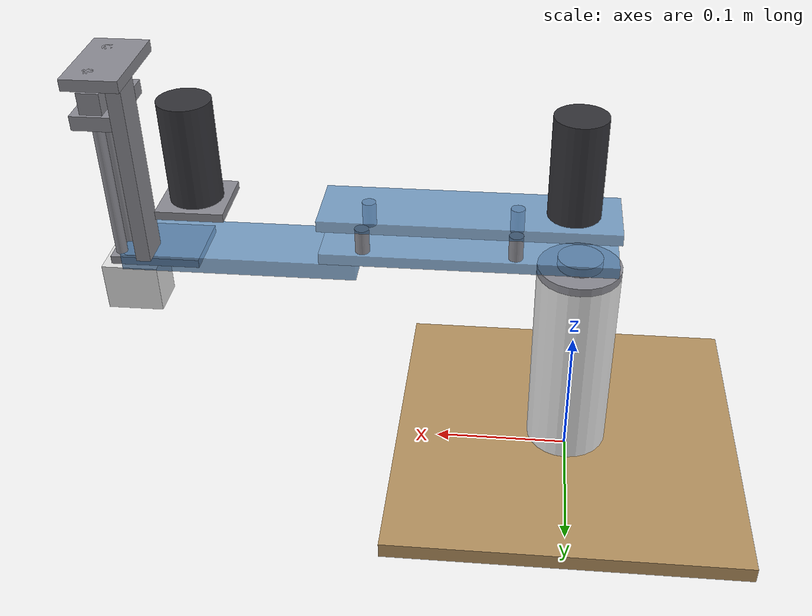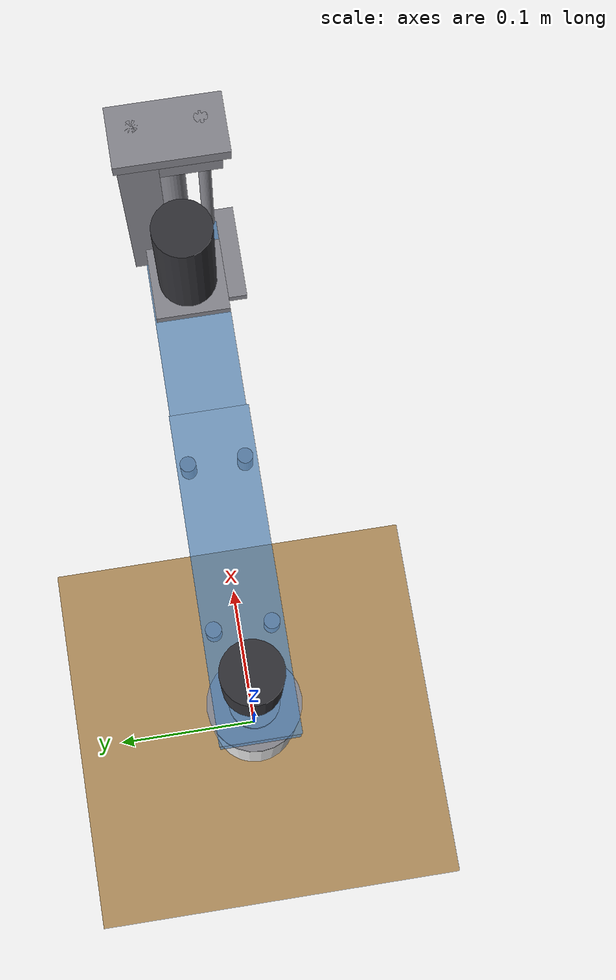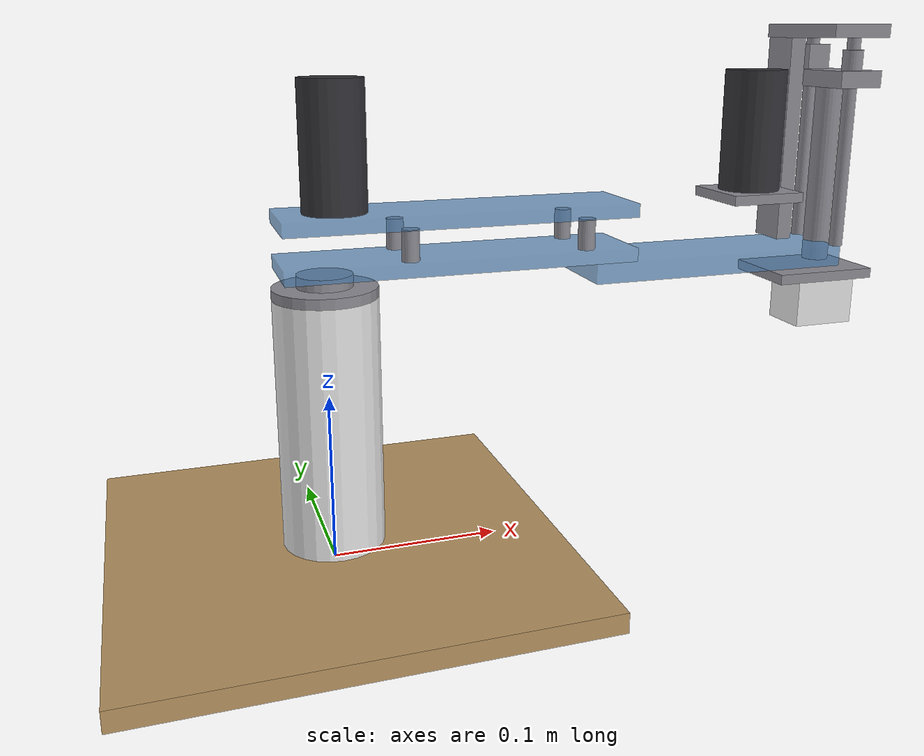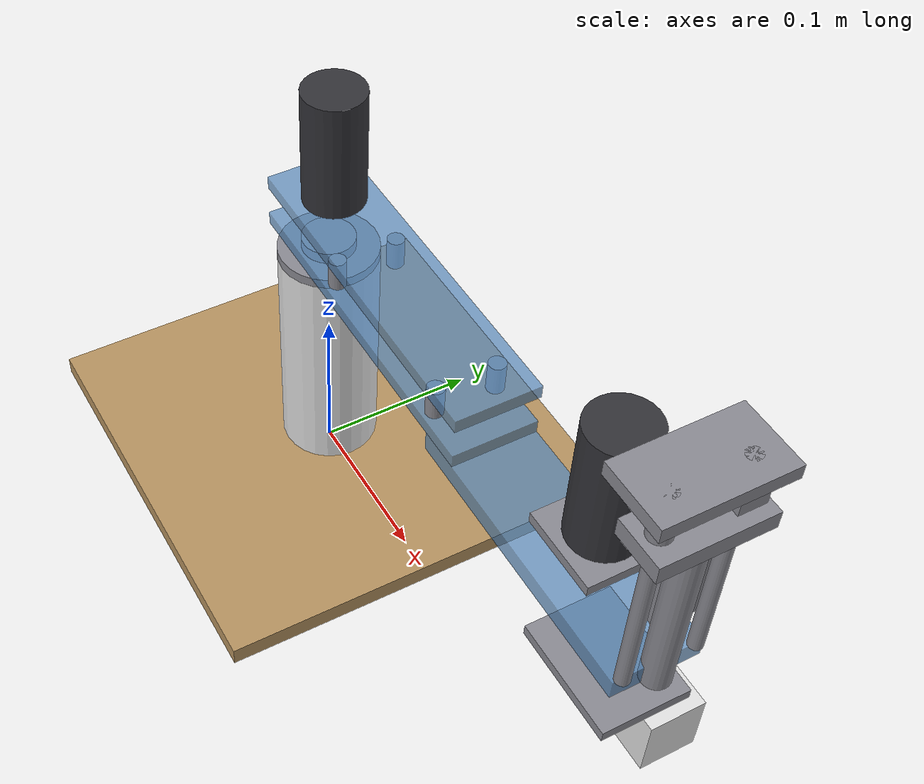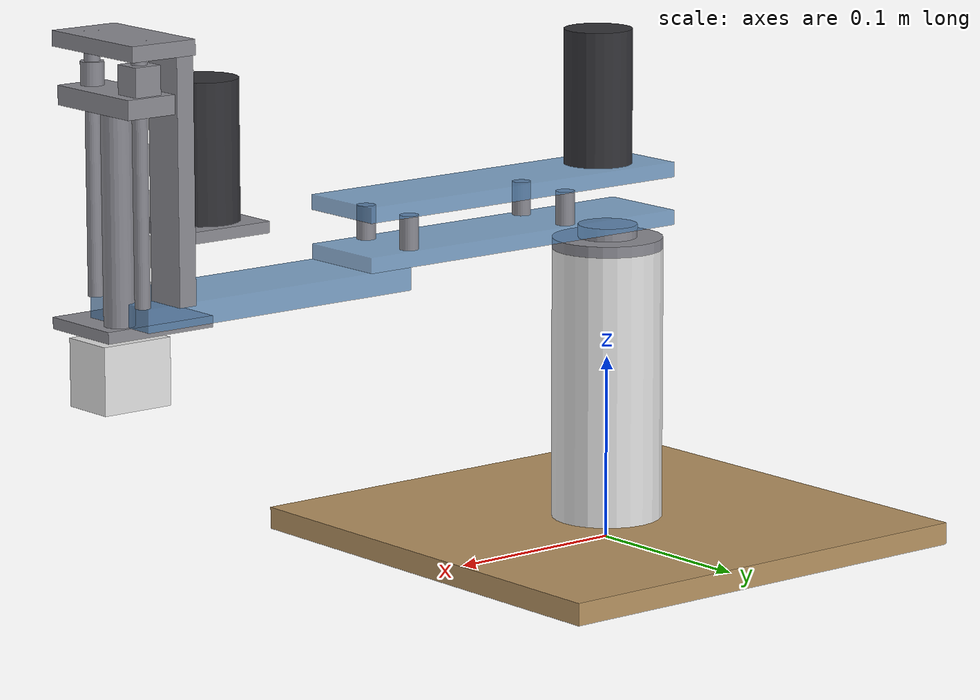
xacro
<?xml version="1.0"?>
<robot xmlns:xacro="http://www.ros.org/wiki/xacro" name="station1">

  <xacro:arg name="prefijo" default="station1/"/>
  <xacro:property name="p" value="$(arg prefijo)"/>

  <xacro:include filename="$(find station1_description)/urdf/parametros.xacro"/>
  <xacro:include filename="$(find station1_description)/urdf/inercias.xacro"/>
  <xacro:include filename="$(find station1_description)/urdf/station1.gazebo.xacro"/>
  <xacro:include filename="$(find station1_description)/urdf/station1.ros2_control.xacro"/>

  <!-- Con control:=false el modelo se puede abrir en RViz sin levantar el
       controller_manager, que es como se reviso el arbol TF en la Entrega 1. -->
  <xacro:arg name="control" default="true"/>
  <xacro:arg name="controladores"
             default="$(find station1_description)/config/station1_controllers.yaml"/>

  <material name="acrilico">  <color rgba="0.35 0.55 0.75 0.75"/></material>
  <material name="mdf">       <color rgba="0.72 0.58 0.38 1.0"/></material>
  <material name="pla">       <color rgba="0.90 0.90 0.90 1.0"/></material>
  <material name="metal">     <color rgba="0.55 0.55 0.58 1.0"/></material>
  <material name="motor">     <color rgba="0.20 0.20 0.22 1.0"/></material>

  <xacro:property name="z_columna_alto" value="${0.160 - base_z}"/>
  <xacro:property name="m_base" value="1.266"/>

  <link name="${p}base_link">
    <visual>
      <origin xyz="0 0 ${base_z/2}"/>
      <geometry><box size="${base_x} ${base_y} ${base_z}"/></geometry>
      <material name="mdf"/>
    </visual>
    <visual>
      <origin xyz="0 0 ${base_z + z_columna_alto/2}"/>
      <geometry><cylinder radius="${columna_radio}" length="${z_columna_alto}"/></geometry>
      <material name="pla"/>
    </visual>
    <visual>
      <origin xyz="0 0 ${0.160 + brida_espesor/2}"/>
      <geometry><cylinder radius="${columna_radio}" length="${brida_espesor}"/></geometry>
      <material name="metal"/>
    </visual>
    <visual>
      <origin xyz="0 0 ${altura_columna - rod_art_alto/2}"/>
      <geometry><cylinder radius="${rod_art_diam/2}" length="${rod_art_alto}"/></geometry>
      <material name="metal"/>
    </visual>
    <!-- Motor de theta1, dentro de la columna. El cuerpo va desplazado 7 mm
         del eje de salida porque la reductora saca el eje a un lado. -->
    <visual>
      <origin xyz="${motor_desfase} 0 ${0.160 - motor_cuerpo/2}"/>
      <geometry><cylinder radius="${motor_diametro/2}" length="${motor_cuerpo}"/></geometry>
      <material name="motor"/>
    </visual>

    <collision>
      <origin xyz="0 0 ${base_z/2}"/>
      <geometry><box size="${base_x} ${base_y} ${base_z}"/></geometry>
    </collision>
    <collision>
      <origin xyz="0 0 ${base_z + (altura_columna - base_z)/2}"/>
      <geometry><cylinder radius="${columna_radio}" length="${altura_columna - base_z}"/></geometry>
    </collision>

    <inertial>
      <origin xyz="0 0 ${altura_columna/3}"/>
      <mass value="${m_base}"/>
      <inertia
        ixx="${m_base * (base_y*base_y + altura_columna*altura_columna) / 12.0}" ixy="0.0" ixz="0.0"
        iyy="${m_base * (base_x*base_x + altura_columna*altura_columna) / 12.0}" iyz="0.0"
        izz="${m_base * (base_x*base_x + base_y*base_y) / 12.0}"/>
    </inertial>
  </link>

  <xacro:arg name="anclar" default="true"/>
  <xacro:if value="$(arg anclar)">
    <link name="world"/>
    <joint name="${p}anclaje" type="fixed">
      <parent link="world"/>
      <child  link="${p}base_link"/>
    </joint>
  </xacro:if>

  <joint name="${p}joint_1" type="revolute">
    <parent link="${p}base_link"/>
    <child  link="${p}link_1"/>
    <origin xyz="0 0 ${altura_columna}"/>
    <axis xyz="0 0 1"/>
    <limit lower="${lim_theta1_inf}" upper="${lim_theta1_sup}"
           velocity="${vel_rot}" effort="${esfuerzo_rot}"/>
    <dynamics damping="0.05" friction="0.01"/>
  </joint>

  <link name="${p}link_1">
    <visual>
      <origin xyz="${(l1+cola)/2 - cola} 0 ${brazo_espesor/2}"/>
      <geometry><box size="${l1+cola} ${brazo_ancho} ${brazo_espesor}"/></geometry>
      <material name="acrilico"/>
    </visual>
    <visual>
      <origin xyz="${(l1+cola)/2 - cola} 0 ${link1_alto - brazo_espesor/2}"/>
      <geometry><box size="${l1+cola} ${brazo_ancho} ${brazo_espesor}"/></geometry>
      <material name="acrilico"/>
    </visual>
    <xacro:macro name="separador_l1" params="sx sy">
      <visual>
        <origin xyz="${sx} ${sy} ${link1_alto/2}"/>
        <geometry><cylinder radius="0.005" length="${link1_alto - 2*brazo_espesor}"/></geometry>
        <material name="metal"/>
      </visual>
    </xacro:macro>
    <xacro:separador_l1 sx="0.045" sy="0.018"/>
    <xacro:separador_l1 sx="0.045" sy="-0.018"/>
    <xacro:separador_l1 sx="0.150" sy="0.018"/>
    <xacro:separador_l1 sx="0.150" sy="-0.018"/>
    <visual>
      <origin xyz="${motor_desfase} 0 ${link1_alto + motor_cuerpo/2}"/>
      <geometry><cylinder radius="${motor_diametro/2}" length="${motor_cuerpo}"/></geometry>
      <material name="motor"/>
    </visual>

    <!-- Colision: la envolvente de la estructura hueca mas el motor. -->
    <collision>
      <origin xyz="${(l1+cola)/2 - cola} 0 ${link1_alto/2}"/>
      <geometry><box size="${l1+cola} ${brazo_ancho} ${link1_alto}"/></geometry>
    </collision>
    <collision>
      <origin xyz="${motor_desfase} 0 ${link1_alto + motor_cuerpo/2}"/>
      <geometry><cylinder radius="${motor_diametro/2}" length="${motor_cuerpo}"/></geometry>
    </collision>

    <inertial>
      <origin xyz="${cx_link1} ${cy_link1} ${cz_link1}"/>
      <mass value="${m_link1}"/>
      <inertia ixx="${ixx_link1}" ixy="${ixy_link1}" ixz="${ixz_link1}"
               iyy="${iyy_link1}" iyz="${iyz_link1}" izz="${izz_link1}"/>
    </inertial>
  </link>

  <joint name="${p}joint_2" type="revolute">
    <parent link="${p}link_1"/>
    <child  link="${p}link_2"/>
    <origin xyz="${l1} 0 0"/>
    <axis xyz="0 0 1"/>
    <limit lower="${-lim_theta2}" upper="${lim_theta2}"
           velocity="${vel_rot}" effort="${esfuerzo_rot}"/>
    <dynamics damping="0.05" friction="0.01"/>
  </joint>

  <link name="${p}link_2">
    <visual>
      <origin xyz="${(l2+cola)/2 - cola} 0 ${-link2_espesor/2}"/>
      <geometry><box size="${l2+cola} ${brazo_ancho} ${link2_espesor}"/></geometry>
      <material name="acrilico"/>
    </visual>
    <!-- Husillo y varilla de guia antigiro, paralelos -->
    <visual>
      <origin xyz="${l2} ${y_husillo} ${husillo_largo/2}"/>
      <geometry><cylinder radius="${husillo_radio}" length="${husillo_largo}"/></geometry>
      <material name="metal"/>
    </visual>
    <visual>
      <origin xyz="${l2} ${y_guia} ${husillo_largo/2}"/>
      <geometry><cylinder radius="${husillo_radio}" length="${husillo_largo}"/></geometry>
      <material name="metal"/>
    </visual>
    <!-- Puente que sostiene el rodamiento superior del husillo -->
    <visual>
      <origin xyz="0.121 0.020 0.063"/>
      <geometry><box size="0.010 0.024 0.126"/></geometry>
      <material name="metal"/>
    </visual>
    <visual>
      <origin xyz="0.135 0 0.130"/>
      <geometry><box size="0.038 0.068 0.008"/></geometry>
      <material name="metal"/>
    </visual>
    <!-- Soporte y motor de d3 -->
    <visual>
      <origin xyz="${motor3_offset - motor_desfase} 0 0.032"/>
      <geometry><box size="0.047 0.047 0.006"/></geometry>
      <material name="metal"/>
    </visual>
    <visual>
      <origin xyz="${motor3_offset - motor_desfase} 0 ${0.035 + motor_cuerpo/2}"/>
      <geometry><cylinder radius="${motor_diametro/2}" length="${motor_cuerpo}"/></geometry>
      <material name="motor"/>
    </visual>

    <collision>
      <origin xyz="${(l2+cola)/2 - cola} 0 ${-link2_espesor/2}"/>
      <geometry><box size="${l2+cola} ${brazo_ancho} ${link2_espesor}"/></geometry>
    </collision>
    <collision>
      <origin xyz="${l2} 0 ${husillo_largo/2}"/>
      <geometry><box size="0.038 0.068 ${husillo_largo}"/></geometry>
    </collision>
    <collision>
      <origin xyz="${motor3_offset - motor_desfase} 0 ${0.035 + motor_cuerpo/2}"/>
      <geometry><cylinder radius="${motor_diametro/2}" length="${motor_cuerpo}"/></geometry>
    </collision>

    <inertial>
      <origin xyz="${cx_link2} ${cy_link2} ${cz_link2}"/>
      <mass value="${m_link2}"/>
      <inertia ixx="${ixx_link2}" ixy="${ixy_link2}" ixz="${ixz_link2}"
               iyy="${iyy_link2}" iyz="${iyz_link2}" izz="${izz_link2}"/>
    </inertial>
  </link>

  <joint name="${p}joint_3" type="prismatic">
    <parent link="${p}link_2"/>
    <child  link="${p}link_3"/>
    <origin xyz="${l2} 0 ${carro_z0}"/>
    <axis xyz="0 0 -1"/>
    <limit lower="0.0" upper="${carrera_d3}"
           velocity="${vel_pris}" effort="${esfuerzo_pris}"/>
    <dynamics damping="2.0" friction="4.0"/>
  </joint>

  <link name="${p}link_3">
    <visual>
      <origin xyz="0 0 ${carro_espesor/2}"/>
      <geometry><box size="0.028 0.060 ${carro_espesor}"/></geometry>
      <material name="metal"/>
    </visual>
    <visual>
      <origin xyz="0 ${y_husillo} ${carro_espesor + tuerca_lado/2}"/>
      <geometry><box size="${tuerca_lado} ${tuerca_lado} ${tuerca_lado}"/></geometry>
      <material name="metal"/>
    </visual>
    <visual>
      <origin xyz="0 ${y_guia} ${carro_espesor + 0.006}"/>
      <geometry><cylinder radius="0.006" length="0.012"/></geometry>
      <material name="metal"/>
    </visual>
    <visual>
      <origin xyz="0 0 ${-vastago_largo/2}"/>
      <geometry><cylinder radius="${vastago_radio}" length="${vastago_largo}"/></geometry>
      <material name="metal"/>
    </visual>
    <visual>
      <origin xyz="-0.018 -0.014 ${-vastago_largo + 0.003}"/>
      <geometry><box size="0.064 0.048 0.006"/></geometry>
      <material name="metal"/>
    </visual>

    <collision>
      <origin xyz="0 0 ${carro_espesor/2}"/>
      <geometry><box size="0.028 0.060 ${carro_espesor}"/></geometry>
    </collision>
    <collision>
      <origin xyz="0 0 ${-vastago_largo/2}"/>
      <geometry><cylinder radius="${vastago_radio}" length="${vastago_largo}"/></geometry>
    </collision>

    <inertial>
      <origin xyz="${cx_link3} ${cy_link3} ${cz_link3}"/>
      <mass value="${m_link3}"/>
      <inertia ixx="${ixx_link3}" ixy="${ixy_link3}" ixz="${ixz_link3}"
               iyy="${iyy_link3}" iyz="${iyz_link3}" izz="${izz_link3}"/>
    </inertial>
  </link>

  <!-- ==================== Efector final ====================
       Micro servo Tower Pro 9 g con mordaza impresa. No cuenta como grado de
       libertad: los tres GDL son los tres motores DC.
  -->
  <xacro:property name="m_mordaza" value="${densidad_pla * gripper_x * gripper_y * gripper_z * 0.35}"/>
  <xacro:property name="m_gripper" value="${masa_servo + m_mordaza}"/>

  <joint name="${p}gripper_joint" type="revolute">
    <parent link="${p}link_3"/>
    <child  link="${p}gripper_link"/>
    <origin xyz="0 0 ${-vastago_largo}"/>
    <axis xyz="1 0 0"/>
    <limit lower="0.0" upper="${lim_gripper}" velocity="3.0" effort="0.15"/>
  </joint>

  <link name="${p}gripper_link">
    <visual>
      <origin xyz="0 0 ${-servo_z/2}"/>
      <geometry><box size="${servo_x} ${servo_y} ${servo_z}"/></geometry>
      <material name="motor"/>
    </visual>
    <visual>
      <origin xyz="0 0 ${-gripper_z/2}"/>
      <geometry><box size="${gripper_x} ${gripper_y} ${gripper_z}"/></geometry>
      <material name="pla"/>
    </visual>
    <collision>
      <origin xyz="0 0 ${-gripper_z/2}"/>
      <geometry><box size="${gripper_x} ${gripper_y} ${gripper_z}"/></geometry>
    </collision>
    <xacro:inercia_componente masa="${m_gripper}"
                              x="${gripper_x}" y="${gripper_y}" z="${gripper_z}">
      <origin xyz="0 0 ${-gripper_z/2}"/>
    </xacro:inercia_componente>
  </link>

  <joint name="${p}tool0_joint" type="fixed">
    <parent link="${p}link_3"/>
    <child  link="${p}tool0"/>
    <origin xyz="0 0 ${-(vastago_largo + gripper_z)}"/>
  </joint>
  <link name="${p}tool0"/>

  <xacro:station1_gazebo prefijo="${p}"/>

  <xacro:arg name="acople" default="true"/>
  <xacro:arg name="pieza" default="pieza"/>
  <xacro:if value="$(arg acople)">
    <gazebo>
      <plugin filename="gz-sim-detachable-joint-system"
              name="gz::sim::systems::DetachableJoint">
        <parent_link>${p}gripper_link</parent_link>
        <child_model>$(arg pieza)</child_model>
        <child_link>cuerpo</child_link>
        <attach_topic>/station1/pieza/attach</attach_topic>
        <detach_topic>/station1/pieza/detach</detach_topic>
        <suppress_child_warning>true</suppress_child_warning>
      </plugin>
    </gazebo>
  </xacro:if>

  <xacro:if value="$(arg control)">
    <xacro:station1_ros2_control prefijo="${p}"
                                 controladores="$(arg controladores)"/>
  </xacro:if>

</robot>

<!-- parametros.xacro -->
<robot xmlns:xacro="http://www.ros.org/wiki/xacro">

  <!-- ================== Restricciones de la guia ================== -->
  <!-- Envolvente de trabajo en el plano XY: radio 320 mm +/- 20 mm.   -->
  <!-- Envolvente en el plano YZ: la guia lo enuncia como 300 mm +/- 20, -->
  <!-- es decir de 280 a 320, y se lee como la altura total. El profesor  -->
  <!-- aclaro el 16/08/2026 que admitia leerse como 320 +/- 20, pero se   -->
  <!-- dimensiono con el criterio escrito, que es el mas estricto de los  -->
  <!-- dos, de modo que cumple bajo cualquiera de las dos lecturas.       -->
  <!-- La estacion mide 307, con el extremo del husillo como punto mas    -->
  <!-- alto: quedan 13 mm de margen bajo el techo de 320.                 -->
  <xacro:property name="alcance_xy"      value="0.320"/>
  <xacro:property name="altura_estacion" value="0.307"/>

  <!-- ================== Cadena cinematica RRP ===================== -->
  <xacro:property name="l1" value="0.180"/>   <!-- eslabon 1, brazo    -->
  <xacro:property name="l2" value="0.140"/>   <!-- eslabon 2, antebrazo-->

  <!-- Altura del eje de theta1, es decir la cara inferior del eslabon 1.
       Apilado del CAD: placa base 0 a 12, columna 12 a 160, brida 160 a 166
       y rodamiento 6804 de 166 a 173. -->
  <xacro:property name="altura_columna" value="0.173"/>
  <xacro:property name="brida_espesor"  value="0.006"/>
  <xacro:property name="rod_art_diam"   value="0.032"/>
  <xacro:property name="rod_art_alto"   value="0.007"/>

  <!-- ================== Eslabones ================================= -->
  <xacro:property name="brazo_ancho"   value="0.050"/>
  <xacro:property name="brazo_espesor" value="0.008"/>  <!-- placas del eslabon 1 -->
  <xacro:property name="link1_alto"    value="0.034"/>  <!-- estructura hueca -->
  <xacro:property name="link2_espesor" value="0.012"/>
  <!-- Prolongacion por detras del eje de giro, para que quepa la
       circunferencia de tornillos de la brida del motor. -->
  <xacro:property name="cola" value="0.0255"/>

  <xacro:property name="husillo_largo"  value="0.134"/>
  <xacro:property name="husillo_radio"  value="0.004"/>
  <xacro:property name="carrera_d3"     value="0.084"/>   <!-- diseno 80, sobran 4 -->
  <xacro:property name="vastago_largo"  value="0.115"/>
  <xacro:property name="vastago_radio"  value="0.008"/>
  <xacro:property name="carro_espesor"  value="0.010"/>
  <xacro:property name="tuerca_lado"    value="0.015"/>
  <!-- Altura del carro sobre la cara superior del eslabon 2, con d3 = 0 -->
  <xacro:property name="carro_z0"       value="0.097"/>
  <xacro:property name="y_husillo"      value="0.020"/>
  <xacro:property name="y_guia"         value="-0.020"/>

  <xacro:property name="lim_theta1_inf" value="-0.262"/>  <!-- -15 grados  -->
  <xacro:property name="lim_theta1_sup" value="3.229"/>   <!-- +185 grados -->
  <xacro:property name="lim_theta2"     value="2.356"/>
  <xacro:property name="lim_gripper"    value="0.500"/>
  <xacro:property name="home_theta1"    value="3.142"/>   <!-- final de carrera -->
  <xacro:property name="home_theta2"    value="2.356"/>

  <!-- ================== Transmision =============================== -->
  <xacro:property name="avance_husillo"  value="0.008"/>
  <xacro:property name="relacion_correa" value="1.0"/>
  <xacro:property name="vel_rot"  value="${20.944 / relacion_correa}"/>
  <xacro:property name="vel_pris" value="0.0267"/>

  <!-- Correas GT2 de paso 2 mm con poleas de 20 dientes en ambos extremos.
       Diametro primitivo 12.73 mm, de modo que L = 2C + 40 mm exactos. -->
  <xacro:property name="centros_correa_t2" value="0.180"/>  <!-- L = 400 mm -->
  <xacro:property name="centros_correa_d3" value="0.050"/>  <!-- L = 140 mm -->
  <xacro:property name="polea_diam"        value="0.016"/>
  <xacro:property name="polea_masa"        value="0.020"/>

  <xacro:property name="par_motor_continuo" value="0.981"/>
  <xacro:property name="par_motor_bloqueo"  value="2.059"/>
  <xacro:property name="esfuerzo_rot"       value="0.389"/>
  <xacro:property name="rendimiento_husillo" value="0.2"/>
  <xacro:property name="esfuerzo_pris"
    value="${2 * pi * rendimiento_husillo * esfuerzo_rot / avance_husillo}"/>

  <xacro:property name="motor_diametro"    value="0.0368"/>
  <xacro:property name="motor_cuerpo"      value="0.0726"/>
  <xacro:property name="motor_eje_largo"   value="0.022"/>
  <xacro:property name="motor_largo"       value="0.0946"/>
  <xacro:property name="motor_masa"        value="0.210"/>
  <xacro:property name="motor_desfase"     value="0.007"/>
  <xacro:property name="motor_eje_diametro" value="0.006"/>
  <xacro:property name="motor_piloto"      value="0.0155"/>
  <xacro:property name="motor_bcd"         value="0.031"/>
  <xacro:property name="motor_tornillo"    value="0.003"/>
  <!-- Distancia del eje del motor de d3 al codo, sobre el eslabon 2 -->
  <xacro:property name="motor3_offset" value="0.0942"/>

  <!-- Micro servo Tower Pro 9 g -->
  <xacro:property name="servo_x"    value="0.023"/>
  <xacro:property name="servo_y"    value="0.012"/>
  <xacro:property name="servo_z"    value="0.029"/>
  <xacro:property name="masa_servo" value="0.009"/>

  <!-- Mordaza impresa -->
  <xacro:property name="gripper_x" value="0.040"/>
  <xacro:property name="gripper_y" value="0.030"/>
  <xacro:property name="gripper_z" value="0.035"/>

  <!-- ================== Materiales ================================ -->
  <xacro:property name="densidad_mdf"      value="700.0"/>
  <xacro:property name="densidad_acrilico" value="1180.0"/>
  <xacro:property name="densidad_pla"      value="1240.0"/>
  <xacro:property name="densidad_acero"    value="7850.0"/>
  <xacro:property name="densidad_aluminio" value="2700.0"/>
  <xacro:property name="densidad_laton"    value="8500.0"/>

  <xacro:property name="base_x" value="0.260"/>
  <xacro:property name="base_y" value="0.260"/>
  <xacro:property name="base_z" value="0.012"/>
  <xacro:property name="columna_radio" value="0.030"/>

  <xacro:property name="m_link1"   value="0.4954"/>
  <xacro:property name="cx_link1"  value="0.05405"/>
  <xacro:property name="cy_link1"  value="-0.00015"/>
  <xacro:property name="cz_link1"  value="0.03978"/>
  <xacro:property name="ixx_link1" value="5.529e-04"/>
  <xacro:property name="iyy_link1" value="2.552e-03"/>
  <xacro:property name="izz_link1" value="2.135e-03"/>
  <xacro:property name="ixy_link1" value="3.893e-07"/>
  <xacro:property name="ixz_link1" value="5.307e-04"/>
  <xacro:property name="iyz_link1" value="-3.350e-06"/>

  <xacro:property name="m_link2"   value="0.8560"/>
  <xacro:property name="cx_link2"  value="0.08788"/>
  <xacro:property name="cy_link2"  value="0.00269"/>
  <xacro:property name="cz_link2"  value="0.04683"/>
  <xacro:property name="ixx_link2" value="1.902e-03"/>
  <xacro:property name="iyy_link2" value="3.641e-03"/>
  <xacro:property name="izz_link2" value="2.145e-03"/>
  <xacro:property name="ixy_link2" value="-1.189e-04"/>
  <xacro:property name="ixz_link2" value="-8.947e-04"/>
  <xacro:property name="iyz_link2" value="-4.838e-05"/>

  <xacro:property name="m_link3"   value="0.1940"/>
  <xacro:property name="cx_link3"  value="-0.00462"/>
  <xacro:property name="cy_link3"  value="-0.00116"/>
  <xacro:property name="cz_link3"  value="-0.04279"/>
  <xacro:property name="ixx_link3" value="6.065e-04"/>
  <xacro:property name="iyy_link3" value="5.912e-04"/>
  <xacro:property name="izz_link3" value="8.217e-05"/>
  <xacro:property name="ixy_link3" value="-1.150e-05"/>
  <xacro:property name="ixz_link3" value="-6.200e-05"/>
  <xacro:property name="iyz_link3" value="-7.667e-05"/>

  <xacro:property name="z_tool_max"
    value="${altura_columna + carro_z0 - vastago_largo - gripper_z}"/>
  <xacro:property name="z_tool_min" value="${z_tool_max - carrera_d3}"/>

</robot>

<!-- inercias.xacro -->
<robot xmlns:xacro="http://www.ros.org/wiki/xacro">

  <!-- Prisma rectangular de dimensiones x, y, z y densidad dada. -->
  <xacro:macro name="inercia_caja" params="x y z densidad *origen">
    <inertial>
      <xacro:insert_block name="origen"/>
      <xacro:property name="m" value="${densidad * x * y * z}"/>
      <mass value="${m}"/>
      <inertia
        ixx="${m * (y*y + z*z) / 12.0}" ixy="0.0" ixz="0.0"
        iyy="${m * (x*x + z*z) / 12.0}" iyz="0.0"
        izz="${m * (x*x + y*y) / 12.0}"/>
    </inertial>
  </xacro:macro>

  <!-- Cilindro solido de radio r y longitud h, con el eje en Z. -->
  <xacro:macro name="inercia_cilindro" params="radio longitud densidad *origen">
    <inertial>
      <xacro:insert_block name="origen"/>
      <xacro:property name="m" value="${densidad * pi * radio * radio * longitud}"/>
      <mass value="${m}"/>
      <inertia
        ixx="${m * (3.0*radio*radio + longitud*longitud) / 12.0}" ixy="0.0" ixz="0.0"
        iyy="${m * (3.0*radio*radio + longitud*longitud) / 12.0}" iyz="0.0"
        izz="${m * radio * radio / 2.0}"/>
    </inertial>
  </xacro:macro>

  <xacro:macro name="inercia_componente" params="masa x y z *origen">
    <inertial>
      <xacro:insert_block name="origen"/>
      <mass value="${masa}"/>
      <inertia
        ixx="${masa * (y*y + z*z) / 12.0}" ixy="0.0" ixz="0.0"
        iyy="${masa * (x*x + z*z) / 12.0}" iyz="0.0"
        izz="${masa * (x*x + y*y) / 12.0}"/>
    </inertial>
  </xacro:macro>

</robot>
